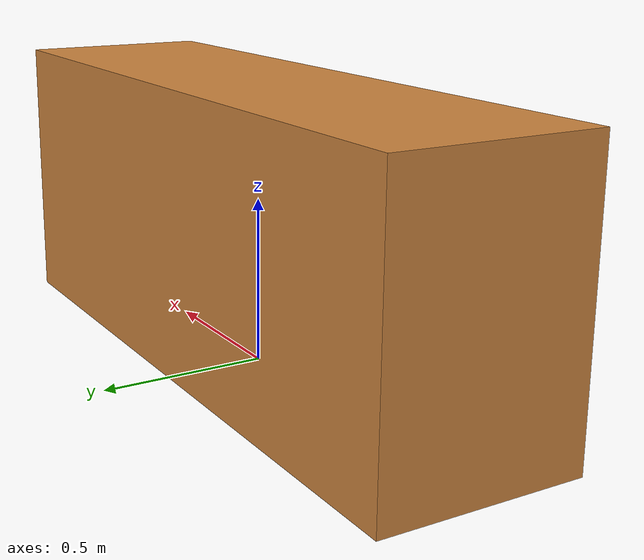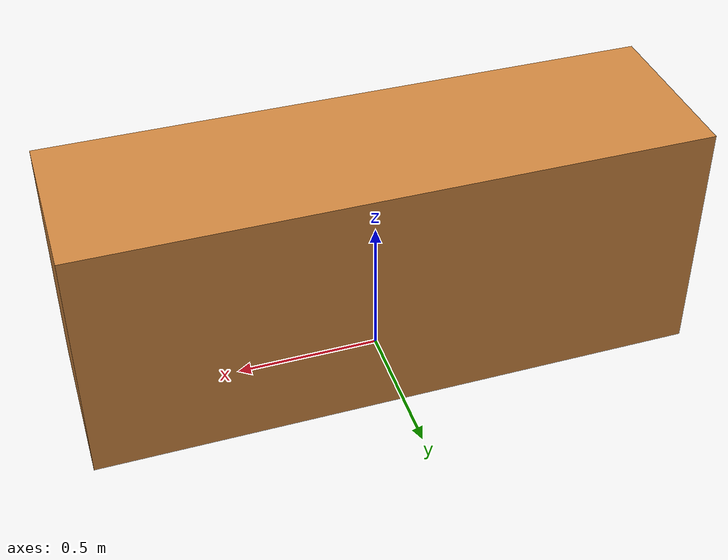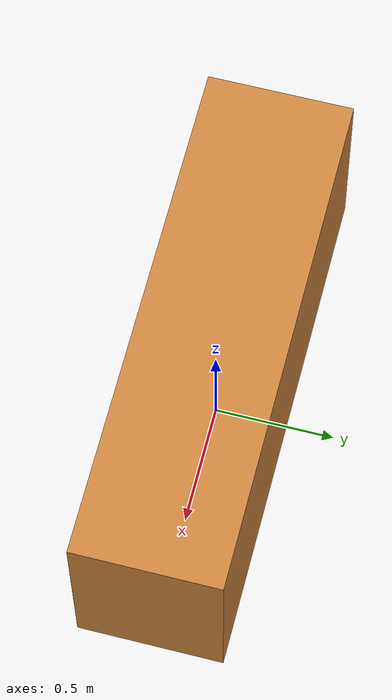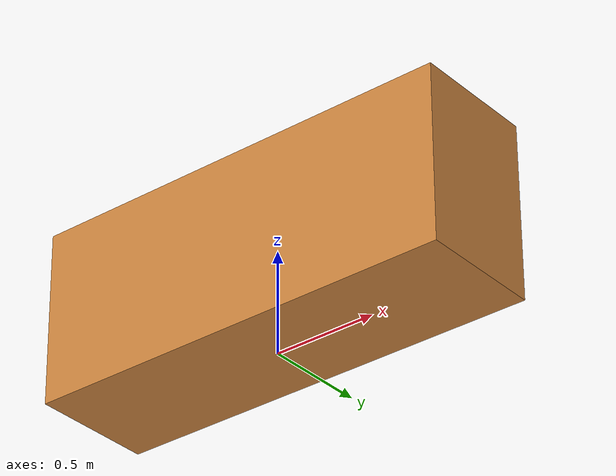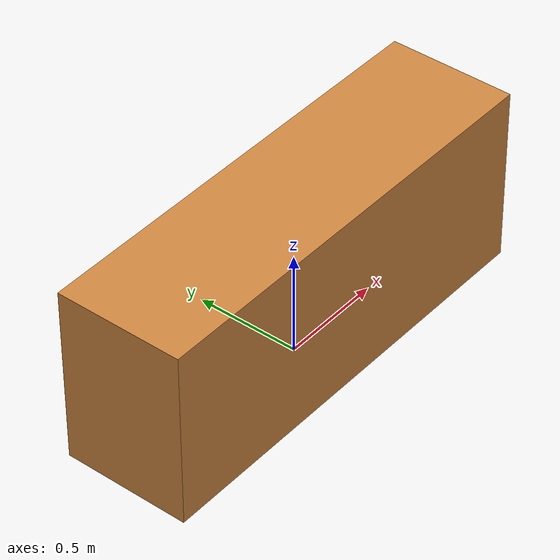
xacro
<?xml version="1.0"?>

<robot name="encimera" xmlns:xacro="http://www.ros.org/wiki/xacro">

<xacro:property name="altura" value="0.85" />
<xacro:property name="ancho" value="0.6" />
<xacro:property name="largo" value="2.1" />

<link name="world" />

<joint name="encimera" type="floating">
  <parent link="world"/>
  <child link="encimera_link"/>
  <origin xyz="0 0 0" rpy="0 0 0" />
</joint>

<link name="encimera_link">
  <visual>
    <geometry>
      <box size="${largo} ${ancho} ${altura}" />
    </geometry>
    <origin rpy="0 0 0" xyz="0 0 ${altura/2}" />
    <material name="wood">
		<color rgba="${205/255} ${133/255} ${63/255} 1" />
    </material>
  </visual>
  <collision>
    <origin rpy="0 0 0" xyz="0 0 ${altura/2}" />
    <geometry>
      <box size="${largo} ${ancho} ${altura}" />
    </geometry>
  </collision>
  <inertial>
    <origin rpy="0 0 0" xyz="0 0 ${altura/2}" />
    <mass value="50" />
      <inertia ixx="5" ixy="0.0" ixz="0.0" iyy="5" iyz="0.0" izz="5"/>
  </inertial>
</link>

<gazebo reference="encimera_link">
  <material>Gazebo/Wood</material>
  <mu1>1</mu1>
  <mu2>1</mu2>
  <selfCollide>true</selfCollide>
  <turnGravityOff>false</turnGravityOff>
</gazebo>

</robot>
